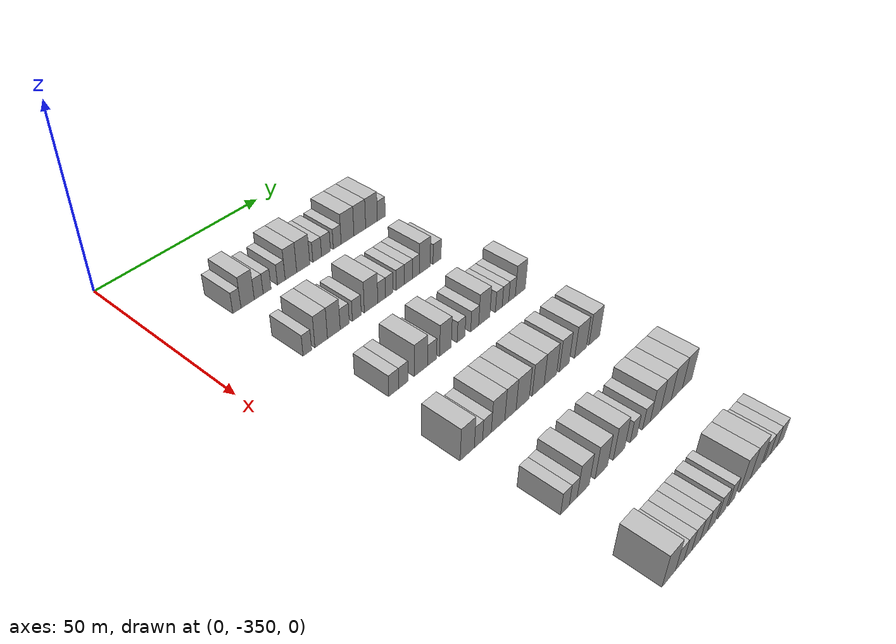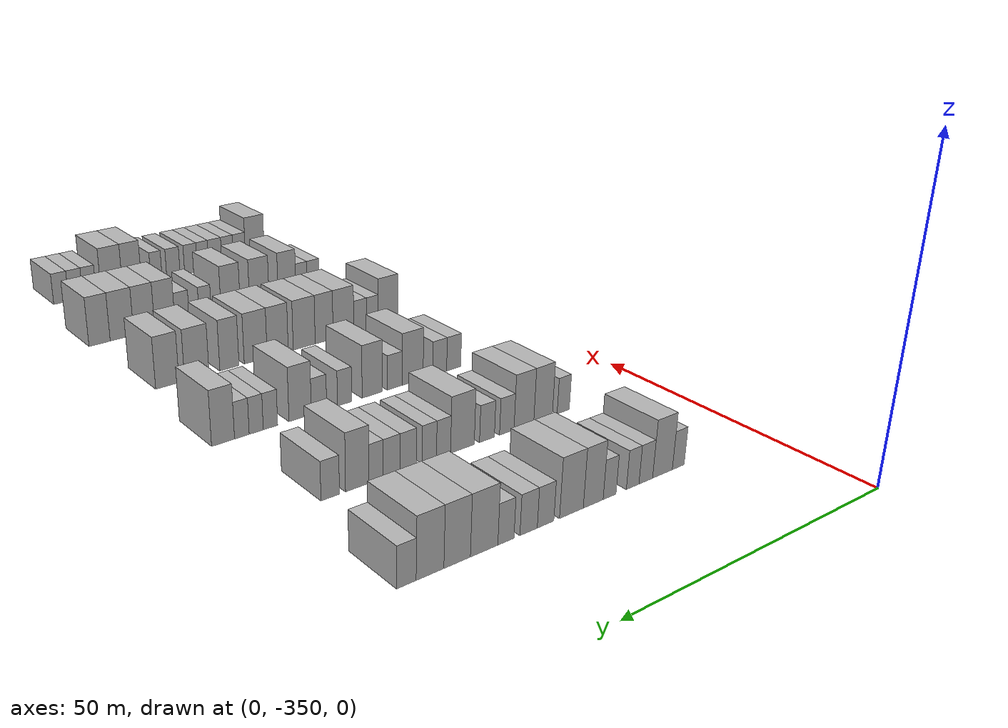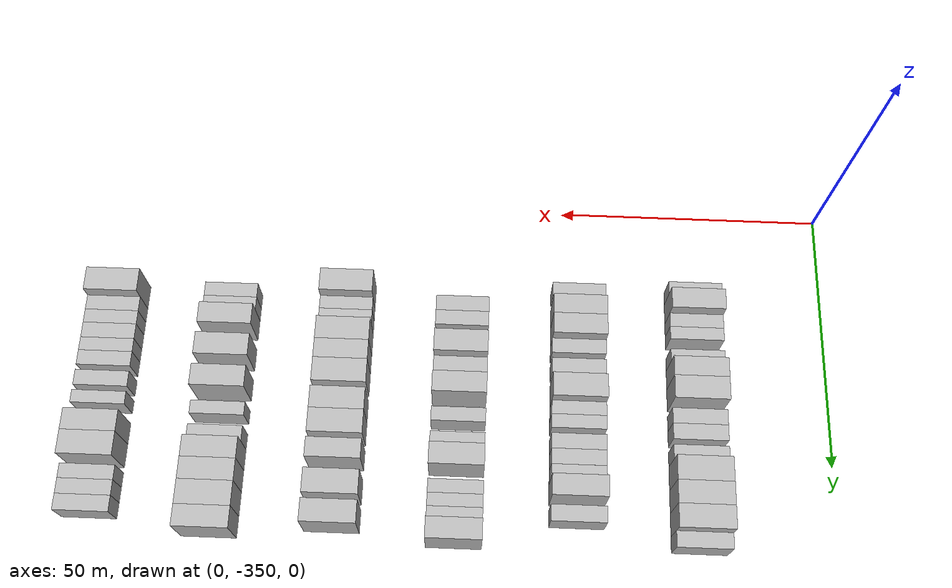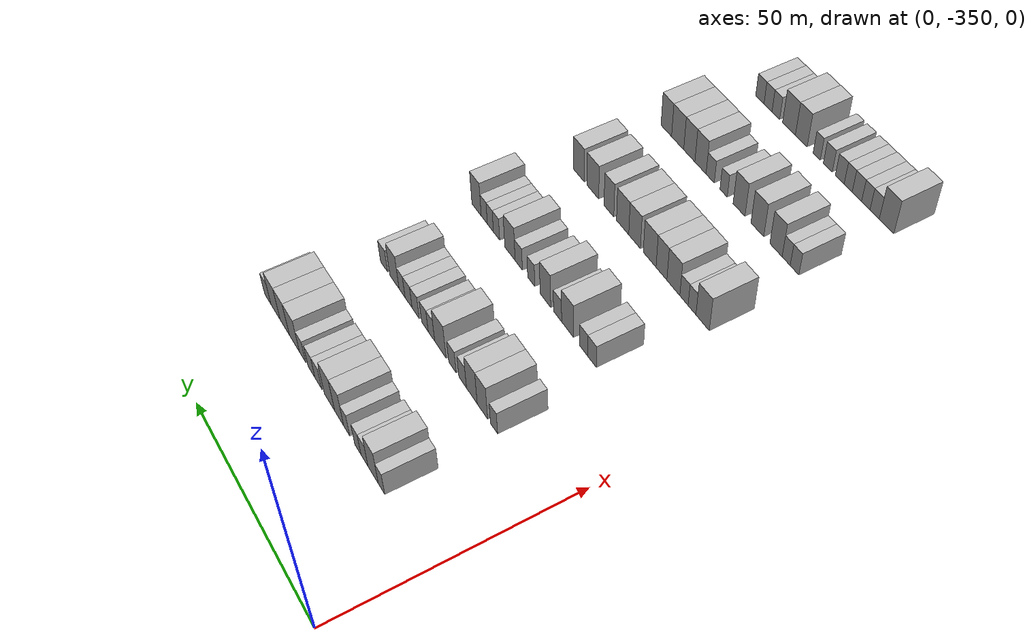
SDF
<sdf version="1.6">
 <world name="default">
  <model name="building_15">
   <static>1</static>
   <pose>25.0000 -332.4710 0 0.000000 0.000000 0.000000</pose>
   <link name="link">
    <pose>0 0 3.00 0 0 0</pose>
    <collision name="collision"><geometry><box><size>10.0000 2.4478 6.0000</size></box></geometry></collision>
    <visual name="visual">
     <cast_shadows>0</cast_shadows>
     <geometry><box><size>10.0000 2.4478 6.0000</size></box></geometry>
     <material>
      <script>
       <uri>model://HANNAS_wall/materials/scripts</uri>
       <uri>model://HANNAS_wall/materials/textures</uri>
       <name>vrc/HANNAS_wall</name>
      </script>
     </material>
    </visual>
   </link>
  </model>
  <model name="building_16">
   <static>1</static>
   <pose>25.0000 -329.2465 0 0.000000 0.000000 0.000000</pose>
   <link name="link">
    <pose>0 0 4.50 0 0 0</pose>
    <collision name="collision"><geometry><box><size>10.0000 4.0012 9.0000</size></box></geometry></collision>
    <visual name="visual">
     <cast_shadows>0</cast_shadows>
     <geometry><box><size>10.0000 4.0012 9.0000</size></box></geometry>
     <material>
      <script>
       <uri>model://HANNAS_wall/materials/scripts</uri>
       <uri>model://HANNAS_wall/materials/textures</uri>
       <name>vrc/HANNAS_wall</name>
      </script>
     </material>
    </visual>
   </link>
  </model>
  <model name="building_17">
   <static>1</static>
   <pose>25.0000 -325.8893 0 0.000000 0.000000 0.000000</pose>
   <link name="link">
    <pose>0 0 3.00 0 0 0</pose>
    <collision name="collision"><geometry><box><size>10.0000 2.7132 6.0000</size></box></geometry></collision>
    <visual name="visual">
     <cast_shadows>0</cast_shadows>
     <geometry><box><size>10.0000 2.7132 6.0000</size></box></geometry>
     <material>
      <script>
       <uri>model://HANNAS_wall/materials/scripts</uri>
       <uri>model://HANNAS_wall/materials/textures</uri>
       <name>vrc/HANNAS_wall</name>
      </script>
     </material>
    </visual>
   </link>
  </model>
  <model name="building_18">
   <static>1</static>
   <pose>25.0000 -323.3023 0 0.000000 0.000000 0.000000</pose>
   <link name="link">
    <pose>0 0 3.00 0 0 0</pose>
    <collision name="collision"><geometry><box><size>10.0000 2.4607 6.0000</size></box></geometry></collision>
    <visual name="visual">
     <cast_shadows>0</cast_shadows>
     <geometry><box><size>10.0000 2.4607 6.0000</size></box></geometry>
     <material>
      <script>
       <uri>model://HANNAS_wall/materials/scripts</uri>
       <uri>model://HANNAS_wall/materials/textures</uri>
       <name>vrc/HANNAS_wall</name>
      </script>
     </material>
    </visual>
   </link>
  </model>
  <model name="building_19">
   <static>1</static>
   <pose>25.0000 -318.8527 0 0.000000 0.000000 0.000000</pose>
   <link name="link">
    <pose>0 0 3.00 0 0 0</pose>
    <collision name="collision"><geometry><box><size>10.0000 2.4385 6.0000</size></box></geometry></collision>
    <visual name="visual">
     <cast_shadows>0</cast_shadows>
     <geometry><box><size>10.0000 2.4385 6.0000</size></box></geometry>
     <material>
      <script>
       <uri>model://HANNAS_wall/materials/scripts</uri>
       <uri>model://HANNAS_wall/materials/textures</uri>
       <name>vrc/HANNAS_wall</name>
      </script>
     </material>
    </visual>
   </link>
  </model>
  <model name="building_20">
   <static>1</static>
   <pose>25.0000 -315.7823 0 0.000000 0.000000 0.000000</pose>
   <link name="link">
    <pose>0 0 4.50 0 0 0</pose>
    <collision name="collision"><geometry><box><size>10.0000 3.7022 9.0000</size></box></geometry></collision>
    <visual name="visual">
     <cast_shadows>0</cast_shadows>
     <geometry><box><size>10.0000 3.7022 9.0000</size></box></geometry>
     <material>
      <script>
       <uri>model://HANNAS_wall/materials/scripts</uri>
       <uri>model://HANNAS_wall/materials/textures</uri>
       <name>vrc/HANNAS_wall</name>
      </script>
     </material>
    </visual>
   </link>
  </model>
  <model name="building_21">
   <static>1</static>
   <pose>25.0000 -311.7753 0 0.000000 0.000000 0.000000</pose>
   <link name="link">
    <pose>0 0 4.50 0 0 0</pose>
    <collision name="collision"><geometry><box><size>10.0000 4.3119 9.0000</size></box></geometry></collision>
    <visual name="visual">
     <cast_shadows>0</cast_shadows>
     <geometry><box><size>10.0000 4.3119 9.0000</size></box></geometry>
     <material>
      <script>
       <uri>model://HANNAS_wall/materials/scripts</uri>
       <uri>model://HANNAS_wall/materials/textures</uri>
       <name>vrc/HANNAS_wall</name>
      </script>
     </material>
    </visual>
   </link>
  </model>
  <model name="building_22">
   <static>1</static>
   <pose>25.0000 -307.1638 0 0.000000 0.000000 0.000000</pose>
   <link name="link">
    <pose>0 0 3.00 0 0 0</pose>
    <collision name="collision"><geometry><box><size>10.0000 2.9110 6.0000</size></box></geometry></collision>
    <visual name="visual">
     <cast_shadows>0</cast_shadows>
     <geometry><box><size>10.0000 2.9110 6.0000</size></box></geometry>
     <material>
      <script>
       <uri>model://HANNAS_wall/materials/scripts</uri>
       <uri>model://HANNAS_wall/materials/textures</uri>
       <name>vrc/HANNAS_wall</name>
      </script>
     </material>
    </visual>
   </link>
  </model>
  <model name="building_23">
   <static>1</static>
   <pose>25.0000 -304.2133 0 0.000000 0.000000 0.000000</pose>
   <link name="link">
    <pose>0 0 3.00 0 0 0</pose>
    <collision name="collision"><geometry><box><size>10.0000 2.9899 6.0000</size></box></geometry></collision>
    <visual name="visual">
     <cast_shadows>0</cast_shadows>
     <geometry><box><size>10.0000 2.9899 6.0000</size></box></geometry>
     <material>
      <script>
       <uri>model://HANNAS_wall/materials/scripts</uri>
       <uri>model://HANNAS_wall/materials/textures</uri>
       <name>vrc/HANNAS_wall</name>
      </script>
     </material>
    </visual>
   </link>
  </model>
  <model name="building_24">
   <static>1</static>
   <pose>25.0000 -300.3630 0 0.000000 0.000000 0.000000</pose>
   <link name="link">
    <pose>0 0 3.00 0 0 0</pose>
    <collision name="collision"><geometry><box><size>10.0000 2.7107 6.0000</size></box></geometry></collision>
    <visual name="visual">
     <cast_shadows>0</cast_shadows>
     <geometry><box><size>10.0000 2.7107 6.0000</size></box></geometry>
     <material>
      <script>
       <uri>model://HANNAS_wall/materials/scripts</uri>
       <uri>model://HANNAS_wall/materials/textures</uri>
       <name>vrc/HANNAS_wall</name>
      </script>
     </material>
    </visual>
   </link>
  </model>
  <model name="building_25">
   <static>1</static>
   <pose>25.0000 -296.7653 0 0.000000 0.000000 0.000000</pose>
   <link name="link">
    <pose>0 0 4.50 0 0 0</pose>
    <collision name="collision"><geometry><box><size>10.0000 4.4847 9.0000</size></box></geometry></collision>
    <visual name="visual">
     <cast_shadows>0</cast_shadows>
     <geometry><box><size>10.0000 4.4847 9.0000</size></box></geometry>
     <material>
      <script>
       <uri>model://HANNAS_wall/materials/scripts</uri>
       <uri>model://HANNAS_wall/materials/textures</uri>
       <name>vrc/HANNAS_wall</name>
      </script>
     </material>
    </visual>
   </link>
  </model>
  <model name="building_26">
   <static>1</static>
   <pose>25.0000 -292.4257 0 0.000000 0.000000 0.000000</pose>
   <link name="link">
    <pose>0 0 4.50 0 0 0</pose>
    <collision name="collision"><geometry><box><size>10.0000 4.1946 9.0000</size></box></geometry></collision>
    <visual name="visual">
     <cast_shadows>0</cast_shadows>
     <geometry><box><size>10.0000 4.1946 9.0000</size></box></geometry>
     <material>
      <script>
       <uri>model://HANNAS_wall/materials/scripts</uri>
       <uri>model://HANNAS_wall/materials/textures</uri>
       <name>vrc/HANNAS_wall</name>
      </script>
     </material>
    </visual>
   </link>
  </model>
  <model name="building_27">
   <static>1</static>
   <pose>25.0000 -288.1981 0 0.000000 0.000000 0.000000</pose>
   <link name="link">
    <pose>0 0 4.50 0 0 0</pose>
    <collision name="collision"><geometry><box><size>10.0000 4.2606 9.0000</size></box></geometry></collision>
    <visual name="visual">
     <cast_shadows>0</cast_shadows>
     <geometry><box><size>10.0000 4.2606 9.0000</size></box></geometry>
     <material>
      <script>
       <uri>model://HANNAS_wall/materials/scripts</uri>
       <uri>model://HANNAS_wall/materials/textures</uri>
       <name>vrc/HANNAS_wall</name>
      </script>
     </material>
    </visual>
   </link>
  </model>
  <model name="building_28">
   <static>1</static>
   <pose>25.0000 -284.6095 0 0.000000 0.000000 0.000000</pose>
   <link name="link">
    <pose>0 0 3.00 0 0 0</pose>
    <collision name="collision"><geometry><box><size>10.0000 2.9166 6.0000</size></box></geometry></collision>
    <visual name="visual">
     <cast_shadows>0</cast_shadows>
     <geometry><box><size>10.0000 2.9166 6.0000</size></box></geometry>
     <material>
      <script>
       <uri>model://HANNAS_wall/materials/scripts</uri>
       <uri>model://HANNAS_wall/materials/textures</uri>
       <name>vrc/HANNAS_wall</name>
      </script>
     </material>
    </visual>
   </link>
  </model>
  <model name="building_197">
   <static>1</static>
   <pose>47.0000 -331.4100 0 0.000000 0.000000 0.000000</pose>
   <link name="link">
    <pose>0 0 3.00 0 0 0</pose>
    <collision name="collision"><geometry><box><size>10.0000 2.5556 6.0000</size></box></geometry></collision>
    <visual name="visual">
     <cast_shadows>0</cast_shadows>
     <geometry><box><size>10.0000 2.5556 6.0000</size></box></geometry>
     <material>
      <script>
       <uri>model://HANNAS_wall/materials/scripts</uri>
       <uri>model://HANNAS_wall/materials/textures</uri>
       <name>vrc/HANNAS_wall</name>
      </script>
     </material>
    </visual>
   </link>
  </model>
  <model name="building_198">
   <static>1</static>
   <pose>47.0000 -327.2264 0 0.000000 0.000000 0.000000</pose>
   <link name="link">
    <pose>0 0 4.50 0 0 0</pose>
    <collision name="collision"><geometry><box><size>10.0000 3.8115 9.0000</size></box></geometry></collision>
    <visual name="visual">
     <cast_shadows>0</cast_shadows>
     <geometry><box><size>10.0000 3.8115 9.0000</size></box></geometry>
     <material>
      <script>
       <uri>model://HANNAS_wall/materials/scripts</uri>
       <uri>model://HANNAS_wall/materials/textures</uri>
       <name>vrc/HANNAS_wall</name>
      </script>
     </material>
    </visual>
   </link>
  </model>
  <model name="building_199">
   <static>1</static>
   <pose>47.0000 -323.3354 0 0.000000 0.000000 0.000000</pose>
   <link name="link">
    <pose>0 0 4.50 0 0 0</pose>
    <collision name="collision"><geometry><box><size>10.0000 3.9704 9.0000</size></box></geometry></collision>
    <visual name="visual">
     <cast_shadows>0</cast_shadows>
     <geometry><box><size>10.0000 3.9704 9.0000</size></box></geometry>
     <material>
      <script>
       <uri>model://HANNAS_wall/materials/scripts</uri>
       <uri>model://HANNAS_wall/materials/textures</uri>
       <name>vrc/HANNAS_wall</name>
      </script>
     </material>
    </visual>
   </link>
  </model>
  <model name="building_200">
   <static>1</static>
   <pose>47.0000 -319.9247 0 0.000000 0.000000 0.000000</pose>
   <link name="link">
    <pose>0 0 3.00 0 0 0</pose>
    <collision name="collision"><geometry><box><size>10.0000 2.8512 6.0000</size></box></geometry></collision>
    <visual name="visual">
     <cast_shadows>0</cast_shadows>
     <geometry><box><size>10.0000 2.8512 6.0000</size></box></geometry>
     <material>
      <script>
       <uri>model://HANNAS_wall/materials/scripts</uri>
       <uri>model://HANNAS_wall/materials/textures</uri>
       <name>vrc/HANNAS_wall</name>
      </script>
     </material>
    </visual>
   </link>
  </model>
  <model name="building_201">
   <static>1</static>
   <pose>47.0000 -316.0681 0 0.000000 0.000000 0.000000</pose>
   <link name="link">
    <pose>0 0 3.00 0 0 0</pose>
    <collision name="collision"><geometry><box><size>10.0000 2.8620 6.0000</size></box></geometry></collision>
    <visual name="visual">
     <cast_shadows>0</cast_shadows>
     <geometry><box><size>10.0000 2.8620 6.0000</size></box></geometry>
     <material>
      <script>
       <uri>model://HANNAS_wall/materials/scripts</uri>
       <uri>model://HANNAS_wall/materials/textures</uri>
       <name>vrc/HANNAS_wall</name>
      </script>
     </material>
    </visual>
   </link>
  </model>
  <model name="building_202">
   <static>1</static>
   <pose>47.0000 -311.4192 0 0.000000 0.000000 0.000000</pose>
   <link name="link">
    <pose>0 0 4.50 0 0 0</pose>
    <collision name="collision"><geometry><box><size>10.0000 4.4359 9.0000</size></box></geometry></collision>
    <visual name="visual">
     <cast_shadows>0</cast_shadows>
     <geometry><box><size>10.0000 4.4359 9.0000</size></box></geometry>
     <material>
      <script>
       <uri>model://HANNAS_wall/materials/scripts</uri>
       <uri>model://HANNAS_wall/materials/textures</uri>
       <name>vrc/HANNAS_wall</name>
      </script>
     </material>
    </visual>
   </link>
  </model>
  <model name="building_203">
   <static>1</static>
   <pose>47.0000 -307.9089 0 0.000000 0.000000 0.000000</pose>
   <link name="link">
    <pose>0 0 3.00 0 0 0</pose>
    <collision name="collision"><geometry><box><size>10.0000 2.5847 6.0000</size></box></geometry></collision>
    <visual name="visual">
     <cast_shadows>0</cast_shadows>
     <geometry><box><size>10.0000 2.5847 6.0000</size></box></geometry>
     <material>
      <script>
       <uri>model://HANNAS_wall/materials/scripts</uri>
       <uri>model://HANNAS_wall/materials/textures</uri>
       <name>vrc/HANNAS_wall</name>
      </script>
     </material>
    </visual>
   </link>
  </model>
  <model name="building_204">
   <static>1</static>
   <pose>47.0000 -305.3234 0 0.000000 0.000000 0.000000</pose>
   <link name="link">
    <pose>0 0 3.00 0 0 0</pose>
    <collision name="collision"><geometry><box><size>10.0000 2.5863 6.0000</size></box></geometry></collision>
    <visual name="visual">
     <cast_shadows>0</cast_shadows>
     <geometry><box><size>10.0000 2.5863 6.0000</size></box></geometry>
     <material>
      <script>
       <uri>model://HANNAS_wall/materials/scripts</uri>
       <uri>model://HANNAS_wall/materials/textures</uri>
       <name>vrc/HANNAS_wall</name>
      </script>
     </material>
    </visual>
   </link>
  </model>
  <model name="building_205">
   <static>1</static>
   <pose>47.0000 -301.5964 0 0.000000 0.000000 0.000000</pose>
   <link name="link">
    <pose>0 0 3.00 0 0 0</pose>
    <collision name="collision"><geometry><box><size>10.0000 2.8677 6.0000</size></box></geometry></collision>
    <visual name="visual">
     <cast_shadows>0</cast_shadows>
     <geometry><box><size>10.0000 2.8677 6.0000</size></box></geometry>
     <material>
      <script>
       <uri>model://HANNAS_wall/materials/scripts</uri>
       <uri>model://HANNAS_wall/materials/textures</uri>
       <name>vrc/HANNAS_wall</name>
      </script>
     </material>
    </visual>
   </link>
  </model>
  <model name="building_206">
   <static>1</static>
   <pose>47.0000 -298.7117 0 0.000000 0.000000 0.000000</pose>
   <link name="link">
    <pose>0 0 3.00 0 0 0</pose>
    <collision name="collision"><geometry><box><size>10.0000 2.9016 6.0000</size></box></geometry></collision>
    <visual name="visual">
     <cast_shadows>0</cast_shadows>
     <geometry><box><size>10.0000 2.9016 6.0000</size></box></geometry>
     <material>
      <script>
       <uri>model://HANNAS_wall/materials/scripts</uri>
       <uri>model://HANNAS_wall/materials/textures</uri>
       <name>vrc/HANNAS_wall</name>
      </script>
     </material>
    </visual>
   </link>
  </model>
  <model name="building_207">
   <static>1</static>
   <pose>47.0000 -296.0267 0 0.000000 0.000000 0.000000</pose>
   <link name="link">
    <pose>0 0 3.00 0 0 0</pose>
    <collision name="collision"><geometry><box><size>10.0000 2.4683 6.0000</size></box></geometry></collision>
    <visual name="visual">
     <cast_shadows>0</cast_shadows>
     <geometry><box><size>10.0000 2.4683 6.0000</size></box></geometry>
     <material>
      <script>
       <uri>model://HANNAS_wall/materials/scripts</uri>
       <uri>model://HANNAS_wall/materials/textures</uri>
       <name>vrc/HANNAS_wall</name>
      </script>
     </material>
    </visual>
   </link>
  </model>
  <model name="building_208">
   <static>1</static>
   <pose>47.0000 -292.8620 0 0.000000 0.000000 0.000000</pose>
   <link name="link">
    <pose>0 0 4.50 0 0 0</pose>
    <collision name="collision"><geometry><box><size>10.0000 3.8612 9.0000</size></box></geometry></collision>
    <visual name="visual">
     <cast_shadows>0</cast_shadows>
     <geometry><box><size>10.0000 3.8612 9.0000</size></box></geometry>
     <material>
      <script>
       <uri>model://HANNAS_wall/materials/scripts</uri>
       <uri>model://HANNAS_wall/materials/textures</uri>
       <name>vrc/HANNAS_wall</name>
      </script>
     </material>
    </visual>
   </link>
  </model>
  <model name="building_209">
   <static>1</static>
   <pose>47.0000 -288.4375 0 0.000000 0.000000 0.000000</pose>
   <link name="link">
    <pose>0 0 3.00 0 0 0</pose>
    <collision name="collision"><geometry><box><size>10.0000 2.9877 6.0000</size></box></geometry></collision>
    <visual name="visual">
     <cast_shadows>0</cast_shadows>
     <geometry><box><size>10.0000 2.9877 6.0000</size></box></geometry>
     <material>
      <script>
       <uri>model://HANNAS_wall/materials/scripts</uri>
       <uri>model://HANNAS_wall/materials/textures</uri>
       <name>vrc/HANNAS_wall</name>
      </script>
     </material>
    </visual>
   </link>
  </model>
  <model name="building_388">
   <static>1</static>
   <pose>69.0000 -327.7000 0 0.000000 0.000000 0.000000</pose>
   <link name="link">
    <pose>0 0 3.00 0 0 0</pose>
    <collision name="collision"><geometry><box><size>10.0000 2.9938 6.0000</size></box></geometry></collision>
    <visual name="visual">
     <cast_shadows>0</cast_shadows>
     <geometry><box><size>10.0000 2.9938 6.0000</size></box></geometry>
     <material>
      <script>
       <uri>model://HANNAS_wall/materials/scripts</uri>
       <uri>model://HANNAS_wall/materials/textures</uri>
       <name>vrc/HANNAS_wall</name>
      </script>
     </material>
    </visual>
   </link>
  </model>
  <model name="building_389">
   <static>1</static>
   <pose>69.0000 -324.7525 0 0.000000 0.000000 0.000000</pose>
   <link name="link">
    <pose>0 0 3.00 0 0 0</pose>
    <collision name="collision"><geometry><box><size>10.0000 2.9013 6.0000</size></box></geometry></collision>
    <visual name="visual">
     <cast_shadows>0</cast_shadows>
     <geometry><box><size>10.0000 2.9013 6.0000</size></box></geometry>
     <material>
      <script>
       <uri>model://HANNAS_wall/materials/scripts</uri>
       <uri>model://HANNAS_wall/materials/textures</uri>
       <name>vrc/HANNAS_wall</name>
      </script>
     </material>
    </visual>
   </link>
  </model>
  <model name="building_390">
   <static>1</static>
   <pose>69.0000 -319.1724 0 0.000000 0.000000 0.000000</pose>
   <link name="link">
    <pose>0 0 4.50 0 0 0</pose>
    <collision name="collision"><geometry><box><size>10.0000 4.2589 9.0000</size></box></geometry></collision>
    <visual name="visual">
     <cast_shadows>0</cast_shadows>
     <geometry><box><size>10.0000 4.2589 9.0000</size></box></geometry>
     <material>
      <script>
       <uri>model://HANNAS_wall/materials/scripts</uri>
       <uri>model://HANNAS_wall/materials/textures</uri>
       <name>vrc/HANNAS_wall</name>
      </script>
     </material>
    </visual>
   </link>
  </model>
  <model name="building_391">
   <static>1</static>
   <pose>69.0000 -315.5765 0 0.000000 0.000000 0.000000</pose>
   <link name="link">
    <pose>0 0 3.00 0 0 0</pose>
    <collision name="collision"><geometry><box><size>10.0000 2.9327 6.0000</size></box></geometry></collision>
    <visual name="visual">
     <cast_shadows>0</cast_shadows>
     <geometry><box><size>10.0000 2.9327 6.0000</size></box></geometry>
     <material>
      <script>
       <uri>model://HANNAS_wall/materials/scripts</uri>
       <uri>model://HANNAS_wall/materials/textures</uri>
       <name>vrc/HANNAS_wall</name>
      </script>
     </material>
    </visual>
   </link>
  </model>
  <model name="building_392">
   <static>1</static>
   <pose>69.0000 -311.1562 0 0.000000 0.000000 0.000000</pose>
   <link name="link">
    <pose>0 0 4.50 0 0 0</pose>
    <collision name="collision"><geometry><box><size>10.0000 3.9080 9.0000</size></box></geometry></collision>
    <visual name="visual">
     <cast_shadows>0</cast_shadows>
     <geometry><box><size>10.0000 3.9080 9.0000</size></box></geometry>
     <material>
      <script>
       <uri>model://HANNAS_wall/materials/scripts</uri>
       <uri>model://HANNAS_wall/materials/textures</uri>
       <name>vrc/HANNAS_wall</name>
      </script>
     </material>
    </visual>
   </link>
  </model>
  <model name="building_393">
   <static>1</static>
   <pose>69.0000 -305.8650 0 0.000000 0.000000 0.000000</pose>
   <link name="link">
    <pose>0 0 3.00 0 0 0</pose>
    <collision name="collision"><geometry><box><size>10.0000 2.6742 6.0000</size></box></geometry></collision>
    <visual name="visual">
     <cast_shadows>0</cast_shadows>
     <geometry><box><size>10.0000 2.6742 6.0000</size></box></geometry>
     <material>
      <script>
       <uri>model://HANNAS_wall/materials/scripts</uri>
       <uri>model://HANNAS_wall/materials/textures</uri>
       <name>vrc/HANNAS_wall</name>
      </script>
     </material>
    </visual>
   </link>
  </model>
  <model name="building_394">
   <static>1</static>
   <pose>69.0000 -301.1251 0 0.000000 0.000000 0.000000</pose>
   <link name="link">
    <pose>0 0 3.00 0 0 0</pose>
    <collision name="collision"><geometry><box><size>10.0000 2.8056 6.0000</size></box></geometry></collision>
    <visual name="visual">
     <cast_shadows>0</cast_shadows>
     <geometry><box><size>10.0000 2.8056 6.0000</size></box></geometry>
     <material>
      <script>
       <uri>model://HANNAS_wall/materials/scripts</uri>
       <uri>model://HANNAS_wall/materials/textures</uri>
       <name>vrc/HANNAS_wall</name>
      </script>
     </material>
    </visual>
   </link>
  </model>
  <model name="building_395">
   <static>1</static>
   <pose>69.0000 -297.7168 0 0.000000 0.000000 0.000000</pose>
   <link name="link">
    <pose>0 0 4.50 0 0 0</pose>
    <collision name="collision"><geometry><box><size>10.0000 4.0110 9.0000</size></box></geometry></collision>
    <visual name="visual">
     <cast_shadows>0</cast_shadows>
     <geometry><box><size>10.0000 4.0110 9.0000</size></box></geometry>
     <material>
      <script>
       <uri>model://HANNAS_wall/materials/scripts</uri>
       <uri>model://HANNAS_wall/materials/textures</uri>
       <name>vrc/HANNAS_wall</name>
      </script>
     </material>
    </visual>
   </link>
  </model>
  <model name="building_396">
   <static>1</static>
   <pose>69.0000 -292.4579 0 0.000000 0.000000 0.000000</pose>
   <link name="link">
    <pose>0 0 3.00 0 0 0</pose>
    <collision name="collision"><geometry><box><size>10.0000 2.5068 6.0000</size></box></geometry></collision>
    <visual name="visual">
     <cast_shadows>0</cast_shadows>
     <geometry><box><size>10.0000 2.5068 6.0000</size></box></geometry>
     <material>
      <script>
       <uri>model://HANNAS_wall/materials/scripts</uri>
       <uri>model://HANNAS_wall/materials/textures</uri>
       <name>vrc/HANNAS_wall</name>
      </script>
     </material>
    </visual>
   </link>
  </model>
  <model name="building_397">
   <static>1</static>
   <pose>69.0000 -289.9950 0 0.000000 0.000000 0.000000</pose>
   <link name="link">
    <pose>0 0 3.00 0 0 0</pose>
    <collision name="collision"><geometry><box><size>10.0000 2.4191 6.0000</size></box></geometry></collision>
    <visual name="visual">
     <cast_shadows>0</cast_shadows>
     <geometry><box><size>10.0000 2.4191 6.0000</size></box></geometry>
     <material>
      <script>
       <uri>model://HANNAS_wall/materials/scripts</uri>
       <uri>model://HANNAS_wall/materials/textures</uri>
       <name>vrc/HANNAS_wall</name>
      </script>
     </material>
    </visual>
   </link>
  </model>
  <model name="building_398">
   <static>1</static>
   <pose>69.0000 -287.5463 0 0.000000 0.000000 0.000000</pose>
   <link name="link">
    <pose>0 0 3.00 0 0 0</pose>
    <collision name="collision"><geometry><box><size>10.0000 2.4783 6.0000</size></box></geometry></collision>
    <visual name="visual">
     <cast_shadows>0</cast_shadows>
     <geometry><box><size>10.0000 2.4783 6.0000</size></box></geometry>
     <material>
      <script>
       <uri>model://HANNAS_wall/materials/scripts</uri>
       <uri>model://HANNAS_wall/materials/textures</uri>
       <name>vrc/HANNAS_wall</name>
      </script>
     </material>
    </visual>
   </link>
  </model>
  <model name="building_399">
   <static>1</static>
   <pose>69.0000 -284.4016 0 0.000000 0.000000 0.000000</pose>
   <link name="link">
    <pose>0 0 4.50 0 0 0</pose>
    <collision name="collision"><geometry><box><size>10.0000 3.8112 9.0000</size></box></geometry></collision>
    <visual name="visual">
     <cast_shadows>0</cast_shadows>
     <geometry><box><size>10.0000 3.8112 9.0000</size></box></geometry>
     <material>
      <script>
       <uri>model://HANNAS_wall/materials/scripts</uri>
       <uri>model://HANNAS_wall/materials/textures</uri>
       <name>vrc/HANNAS_wall</name>
      </script>
     </material>
    </visual>
   </link>
  </model>
  <model name="building_582">
   <static>1</static>
   <pose>91.0000 -330.4313 0 0.000000 0.000000 0.000000</pose>
   <link name="link">
    <pose>0 0 4.50 0 0 0</pose>
    <collision name="collision"><geometry><box><size>10.0000 4.3455 9.0000</size></box></geometry></collision>
    <visual name="visual">
     <cast_shadows>0</cast_shadows>
     <geometry><box><size>10.0000 4.3455 9.0000</size></box></geometry>
     <material>
      <script>
       <uri>model://HANNAS_wall/materials/scripts</uri>
       <uri>model://HANNAS_wall/materials/textures</uri>
       <name>vrc/HANNAS_wall</name>
      </script>
     </material>
    </visual>
   </link>
  </model>
  <model name="building_583">
   <static>1</static>
   <pose>91.0000 -326.9714 0 0.000000 0.000000 0.000000</pose>
   <link name="link">
    <pose>0 0 3.00 0 0 0</pose>
    <collision name="collision"><geometry><box><size>10.0000 2.5744 6.0000</size></box></geometry></collision>
    <visual name="visual">
     <cast_shadows>0</cast_shadows>
     <geometry><box><size>10.0000 2.5744 6.0000</size></box></geometry>
     <material>
      <script>
       <uri>model://HANNAS_wall/materials/scripts</uri>
       <uri>model://HANNAS_wall/materials/textures</uri>
       <name>vrc/HANNAS_wall</name>
      </script>
     </material>
    </visual>
   </link>
  </model>
  <model name="building_584">
   <static>1</static>
   <pose>91.0000 -324.3081 0 0.000000 0.000000 0.000000</pose>
   <link name="link">
    <pose>0 0 3.00 0 0 0</pose>
    <collision name="collision"><geometry><box><size>10.0000 2.7521 6.0000</size></box></geometry></collision>
    <visual name="visual">
     <cast_shadows>0</cast_shadows>
     <geometry><box><size>10.0000 2.7521 6.0000</size></box></geometry>
     <material>
      <script>
       <uri>model://HANNAS_wall/materials/scripts</uri>
       <uri>model://HANNAS_wall/materials/textures</uri>
       <name>vrc/HANNAS_wall</name>
      </script>
     </material>
    </visual>
   </link>
  </model>
  <model name="building_585">
   <static>1</static>
   <pose>91.0000 -320.7421 0 0.000000 0.000000 0.000000</pose>
   <link name="link">
    <pose>0 0 4.50 0 0 0</pose>
    <collision name="collision"><geometry><box><size>10.0000 4.3799 9.0000</size></box></geometry></collision>
    <visual name="visual">
     <cast_shadows>0</cast_shadows>
     <geometry><box><size>10.0000 4.3799 9.0000</size></box></geometry>
     <material>
      <script>
       <uri>model://HANNAS_wall/materials/scripts</uri>
       <uri>model://HANNAS_wall/materials/textures</uri>
       <name>vrc/HANNAS_wall</name>
      </script>
     </material>
    </visual>
   </link>
  </model>
  <model name="building_586">
   <static>1</static>
   <pose>91.0000 -316.6899 0 0.000000 0.000000 0.000000</pose>
   <link name="link">
    <pose>0 0 4.50 0 0 0</pose>
    <collision name="collision"><geometry><box><size>10.0000 3.7246 9.0000</size></box></geometry></collision>
    <visual name="visual">
     <cast_shadows>0</cast_shadows>
     <geometry><box><size>10.0000 3.7246 9.0000</size></box></geometry>
     <material>
      <script>
       <uri>model://HANNAS_wall/materials/scripts</uri>
       <uri>model://HANNAS_wall/materials/textures</uri>
       <name>vrc/HANNAS_wall</name>
      </script>
     </material>
    </visual>
   </link>
  </model>
  <model name="building_587">
   <static>1</static>
   <pose>91.0000 -312.5911 0 0.000000 0.000000 0.000000</pose>
   <link name="link">
    <pose>0 0 4.50 0 0 0</pose>
    <collision name="collision"><geometry><box><size>10.0000 4.4730 9.0000</size></box></geometry></collision>
    <visual name="visual">
     <cast_shadows>0</cast_shadows>
     <geometry><box><size>10.0000 4.4730 9.0000</size></box></geometry>
     <material>
      <script>
       <uri>model://HANNAS_wall/materials/scripts</uri>
       <uri>model://HANNAS_wall/materials/textures</uri>
       <name>vrc/HANNAS_wall</name>
      </script>
     </material>
    </visual>
   </link>
  </model>
  <model name="building_588">
   <static>1</static>
   <pose>91.0000 -307.2700 0 0.000000 0.000000 0.000000</pose>
   <link name="link">
    <pose>0 0 4.50 0 0 0</pose>
    <collision name="collision"><geometry><box><size>10.0000 4.1693 9.0000</size></box></geometry></collision>
    <visual name="visual">
     <cast_shadows>0</cast_shadows>
     <geometry><box><size>10.0000 4.1693 9.0000</size></box></geometry>
     <material>
      <script>
       <uri>model://HANNAS_wall/materials/scripts</uri>
       <uri>model://HANNAS_wall/materials/textures</uri>
       <name>vrc/HANNAS_wall</name>
      </script>
     </material>
    </visual>
   </link>
  </model>
  <model name="building_589">
   <static>1</static>
   <pose>91.0000 -302.9613 0 0.000000 0.000000 0.000000</pose>
   <link name="link">
    <pose>0 0 4.50 0 0 0</pose>
    <collision name="collision"><geometry><box><size>10.0000 4.4480 9.0000</size></box></geometry></collision>
    <visual name="visual">
     <cast_shadows>0</cast_shadows>
     <geometry><box><size>10.0000 4.4480 9.0000</size></box></geometry>
     <material>
      <script>
       <uri>model://HANNAS_wall/materials/scripts</uri>
       <uri>model://HANNAS_wall/materials/textures</uri>
       <name>vrc/HANNAS_wall</name>
      </script>
     </material>
    </visual>
   </link>
  </model>
  <model name="building_590">
   <static>1</static>
   <pose>91.0000 -297.9302 0 0.000000 0.000000 0.000000</pose>
   <link name="link">
    <pose>0 0 4.50 0 0 0</pose>
    <collision name="collision"><geometry><box><size>10.0000 3.6143 9.0000</size></box></geometry></collision>
    <visual name="visual">
     <cast_shadows>0</cast_shadows>
     <geometry><box><size>10.0000 3.6143 9.0000</size></box></geometry>
     <material>
      <script>
       <uri>model://HANNAS_wall/materials/scripts</uri>
       <uri>model://HANNAS_wall/materials/textures</uri>
       <name>vrc/HANNAS_wall</name>
      </script>
     </material>
    </visual>
   </link>
  </model>
  <model name="building_591">
   <static>1</static>
   <pose>91.0000 -291.8953 0 0.000000 0.000000 0.000000</pose>
   <link name="link">
    <pose>0 0 4.50 0 0 0</pose>
    <collision name="collision"><geometry><box><size>10.0000 4.4555 9.0000</size></box></geometry></collision>
    <visual name="visual">
     <cast_shadows>0</cast_shadows>
     <geometry><box><size>10.0000 4.4555 9.0000</size></box></geometry>
     <material>
      <script>
       <uri>model://HANNAS_wall/materials/scripts</uri>
       <uri>model://HANNAS_wall/materials/textures</uri>
       <name>vrc/HANNAS_wall</name>
      </script>
     </material>
    </visual>
   </link>
  </model>
  <model name="building_592">
   <static>1</static>
   <pose>91.0000 -286.5893 0 0.000000 0.000000 0.000000</pose>
   <link name="link">
    <pose>0 0 4.50 0 0 0</pose>
    <collision name="collision"><geometry><box><size>10.0000 4.1566 9.0000</size></box></geometry></collision>
    <visual name="visual">
     <cast_shadows>0</cast_shadows>
     <geometry><box><size>10.0000 4.1566 9.0000</size></box></geometry>
     <material>
      <script>
       <uri>model://HANNAS_wall/materials/scripts</uri>
       <uri>model://HANNAS_wall/materials/textures</uri>
       <name>vrc/HANNAS_wall</name>
      </script>
     </material>
    </visual>
   </link>
  </model>
  <model name="building_766">
   <static>1</static>
   <pose>113.0000 -328.8081 0 0.000000 0.000000 0.000000</pose>
   <link name="link">
    <pose>0 0 3.00 0 0 0</pose>
    <collision name="collision"><geometry><box><size>10.0000 2.7486 6.0000</size></box></geometry></collision>
    <visual name="visual">
     <cast_shadows>0</cast_shadows>
     <geometry><box><size>10.0000 2.7486 6.0000</size></box></geometry>
     <material>
      <script>
       <uri>model://HANNAS_wall/materials/scripts</uri>
       <uri>model://HANNAS_wall/materials/textures</uri>
       <name>vrc/HANNAS_wall</name>
      </script>
     </material>
    </visual>
   </link>
  </model>
  <model name="building_767">
   <static>1</static>
   <pose>113.0000 -326.1483 0 0.000000 0.000000 0.000000</pose>
   <link name="link">
    <pose>0 0 3.00 0 0 0</pose>
    <collision name="collision"><geometry><box><size>10.0000 2.5708 6.0000</size></box></geometry></collision>
    <visual name="visual">
     <cast_shadows>0</cast_shadows>
     <geometry><box><size>10.0000 2.5708 6.0000</size></box></geometry>
     <material>
      <script>
       <uri>model://HANNAS_wall/materials/scripts</uri>
       <uri>model://HANNAS_wall/materials/textures</uri>
       <name>vrc/HANNAS_wall</name>
      </script>
     </material>
    </visual>
   </link>
  </model>
  <model name="building_768">
   <static>1</static>
   <pose>113.0000 -322.8839 0 0.000000 0.000000 0.000000</pose>
   <link name="link">
    <pose>0 0 4.50 0 0 0</pose>
    <collision name="collision"><geometry><box><size>10.0000 3.9581 9.0000</size></box></geometry></collision>
    <visual name="visual">
     <cast_shadows>0</cast_shadows>
     <geometry><box><size>10.0000 3.9581 9.0000</size></box></geometry>
     <material>
      <script>
       <uri>model://HANNAS_wall/materials/scripts</uri>
       <uri>model://HANNAS_wall/materials/textures</uri>
       <name>vrc/HANNAS_wall</name>
      </script>
     </material>
    </visual>
   </link>
  </model>
  <model name="building_769">
   <static>1</static>
   <pose>113.0000 -316.7929 0 0.000000 0.000000 0.000000</pose>
   <link name="link">
    <pose>0 0 4.50 0 0 0</pose>
    <collision name="collision"><geometry><box><size>10.0000 4.2239 9.0000</size></box></geometry></collision>
    <visual name="visual">
     <cast_shadows>0</cast_shadows>
     <geometry><box><size>10.0000 4.2239 9.0000</size></box></geometry>
     <material>
      <script>
       <uri>model://HANNAS_wall/materials/scripts</uri>
       <uri>model://HANNAS_wall/materials/textures</uri>
       <name>vrc/HANNAS_wall</name>
      </script>
     </material>
    </visual>
   </link>
  </model>
  <model name="building_770">
   <static>1</static>
   <pose>113.0000 -310.6653 0 0.000000 0.000000 0.000000</pose>
   <link name="link">
    <pose>0 0 4.50 0 0 0</pose>
    <collision name="collision"><geometry><box><size>10.0000 4.0313 9.0000</size></box></geometry></collision>
    <visual name="visual">
     <cast_shadows>0</cast_shadows>
     <geometry><box><size>10.0000 4.0313 9.0000</size></box></geometry>
     <material>
      <script>
       <uri>model://HANNAS_wall/materials/scripts</uri>
       <uri>model://HANNAS_wall/materials/textures</uri>
       <name>vrc/HANNAS_wall</name>
      </script>
     </material>
    </visual>
   </link>
  </model>
  <model name="building_771">
   <static>1</static>
   <pose>113.0000 -305.3930 0 0.000000 0.000000 0.000000</pose>
   <link name="link">
    <pose>0 0 3.00 0 0 0</pose>
    <collision name="collision"><geometry><box><size>10.0000 2.5132 6.0000</size></box></geometry></collision>
    <visual name="visual">
     <cast_shadows>0</cast_shadows>
     <geometry><box><size>10.0000 2.5132 6.0000</size></box></geometry>
     <material>
      <script>
       <uri>model://HANNAS_wall/materials/scripts</uri>
       <uri>model://HANNAS_wall/materials/textures</uri>
       <name>vrc/HANNAS_wall</name>
      </script>
     </material>
    </visual>
   </link>
  </model>
  <model name="building_772">
   <static>1</static>
   <pose>113.0000 -300.6953 0 0.000000 0.000000 0.000000</pose>
   <link name="link">
    <pose>0 0 3.00 0 0 0</pose>
    <collision name="collision"><geometry><box><size>10.0000 2.8823 6.0000</size></box></geometry></collision>
    <visual name="visual">
     <cast_shadows>0</cast_shadows>
     <geometry><box><size>10.0000 2.8823 6.0000</size></box></geometry>
     <material>
      <script>
       <uri>model://HANNAS_wall/materials/scripts</uri>
       <uri>model://HANNAS_wall/materials/textures</uri>
       <name>vrc/HANNAS_wall</name>
      </script>
     </material>
    </visual>
   </link>
  </model>
  <model name="building_773">
   <static>1</static>
   <pose>113.0000 -297.2633 0 0.000000 0.000000 0.000000</pose>
   <link name="link">
    <pose>0 0 4.50 0 0 0</pose>
    <collision name="collision"><geometry><box><size>10.0000 3.9817 9.0000</size></box></geometry></collision>
    <visual name="visual">
     <cast_shadows>0</cast_shadows>
     <geometry><box><size>10.0000 3.9817 9.0000</size></box></geometry>
     <material>
      <script>
       <uri>model://HANNAS_wall/materials/scripts</uri>
       <uri>model://HANNAS_wall/materials/textures</uri>
       <name>vrc/HANNAS_wall</name>
      </script>
     </material>
    </visual>
   </link>
  </model>
  <model name="building_774">
   <static>1</static>
   <pose>113.0000 -293.2487 0 0.000000 0.000000 0.000000</pose>
   <link name="link">
    <pose>0 0 4.50 0 0 0</pose>
    <collision name="collision"><geometry><box><size>10.0000 4.0475 9.0000</size></box></geometry></collision>
    <visual name="visual">
     <cast_shadows>0</cast_shadows>
     <geometry><box><size>10.0000 4.0475 9.0000</size></box></geometry>
     <material>
      <script>
       <uri>model://HANNAS_wall/materials/scripts</uri>
       <uri>model://HANNAS_wall/materials/textures</uri>
       <name>vrc/HANNAS_wall</name>
      </script>
     </material>
    </visual>
   </link>
  </model>
  <model name="building_775">
   <static>1</static>
   <pose>113.0000 -288.9891 0 0.000000 0.000000 0.000000</pose>
   <link name="link">
    <pose>0 0 4.50 0 0 0</pose>
    <collision name="collision"><geometry><box><size>10.0000 4.4717 9.0000</size></box></geometry></collision>
    <visual name="visual">
     <cast_shadows>0</cast_shadows>
     <geometry><box><size>10.0000 4.4717 9.0000</size></box></geometry>
     <material>
      <script>
       <uri>model://HANNAS_wall/materials/scripts</uri>
       <uri>model://HANNAS_wall/materials/textures</uri>
       <name>vrc/HANNAS_wall</name>
      </script>
     </material>
    </visual>
   </link>
  </model>
  <model name="building_776">
   <static>1</static>
   <pose>113.0000 -284.7883 0 0.000000 0.000000 0.000000</pose>
   <link name="link">
    <pose>0 0 4.50 0 0 0</pose>
    <collision name="collision"><geometry><box><size>10.0000 3.9300 9.0000</size></box></geometry></collision>
    <visual name="visual">
     <cast_shadows>0</cast_shadows>
     <geometry><box><size>10.0000 3.9300 9.0000</size></box></geometry>
     <material>
      <script>
       <uri>model://HANNAS_wall/materials/scripts</uri>
       <uri>model://HANNAS_wall/materials/textures</uri>
       <name>vrc/HANNAS_wall</name>
      </script>
     </material>
    </visual>
   </link>
  </model>
  <model name="building_947">
   <static>1</static>
   <pose>135.0000 -328.8536 0 0.000000 0.000000 0.000000</pose>
   <link name="link">
    <pose>0 0 4.50 0 0 0</pose>
    <collision name="collision"><geometry><box><size>10.0000 4.4683 9.0000</size></box></geometry></collision>
    <visual name="visual">
     <cast_shadows>0</cast_shadows>
     <geometry><box><size>10.0000 4.4683 9.0000</size></box></geometry>
     <material>
      <script>
       <uri>model://HANNAS_wall/materials/scripts</uri>
       <uri>model://HANNAS_wall/materials/textures</uri>
       <name>vrc/HANNAS_wall</name>
      </script>
     </material>
    </visual>
   </link>
  </model>
  <model name="building_948">
   <static>1</static>
   <pose>135.0000 -325.1891 0 0.000000 0.000000 0.000000</pose>
   <link name="link">
    <pose>0 0 3.00 0 0 0</pose>
    <collision name="collision"><geometry><box><size>10.0000 2.8607 6.0000</size></box></geometry></collision>
    <visual name="visual">
     <cast_shadows>0</cast_shadows>
     <geometry><box><size>10.0000 2.8607 6.0000</size></box></geometry>
     <material>
      <script>
       <uri>model://HANNAS_wall/materials/scripts</uri>
       <uri>model://HANNAS_wall/materials/textures</uri>
       <name>vrc/HANNAS_wall</name>
      </script>
     </material>
    </visual>
   </link>
  </model>
  <model name="building_949">
   <static>1</static>
   <pose>135.0000 -322.4351 0 0.000000 0.000000 0.000000</pose>
   <link name="link">
    <pose>0 0 3.00 0 0 0</pose>
    <collision name="collision"><geometry><box><size>10.0000 2.6473 6.0000</size></box></geometry></collision>
    <visual name="visual">
     <cast_shadows>0</cast_shadows>
     <geometry><box><size>10.0000 2.6473 6.0000</size></box></geometry>
     <material>
      <script>
       <uri>model://HANNAS_wall/materials/scripts</uri>
       <uri>model://HANNAS_wall/materials/textures</uri>
       <name>vrc/HANNAS_wall</name>
      </script>
     </material>
    </visual>
   </link>
  </model>
  <model name="building_950">
   <static>1</static>
   <pose>135.0000 -319.6239 0 0.000000 0.000000 0.000000</pose>
   <link name="link">
    <pose>0 0 3.00 0 0 0</pose>
    <collision name="collision"><geometry><box><size>10.0000 2.9752 6.0000</size></box></geometry></collision>
    <visual name="visual">
     <cast_shadows>0</cast_shadows>
     <geometry><box><size>10.0000 2.9752 6.0000</size></box></geometry>
     <material>
      <script>
       <uri>model://HANNAS_wall/materials/scripts</uri>
       <uri>model://HANNAS_wall/materials/textures</uri>
       <name>vrc/HANNAS_wall</name>
      </script>
     </material>
    </visual>
   </link>
  </model>
  <model name="building_951">
   <static>1</static>
   <pose>135.0000 -316.8485 0 0.000000 0.000000 0.000000</pose>
   <link name="link">
    <pose>0 0 3.00 0 0 0</pose>
    <collision name="collision"><geometry><box><size>10.0000 2.5756 6.0000</size></box></geometry></collision>
    <visual name="visual">
     <cast_shadows>0</cast_shadows>
     <geometry><box><size>10.0000 2.5756 6.0000</size></box></geometry>
     <material>
      <script>
       <uri>model://HANNAS_wall/materials/scripts</uri>
       <uri>model://HANNAS_wall/materials/textures</uri>
       <name>vrc/HANNAS_wall</name>
      </script>
     </material>
    </visual>
   </link>
  </model>
  <model name="building_952">
   <static>1</static>
   <pose>135.0000 -314.1363 0 0.000000 0.000000 0.000000</pose>
   <link name="link">
    <pose>0 0 3.00 0 0 0</pose>
    <collision name="collision"><geometry><box><size>10.0000 2.8487 6.0000</size></box></geometry></collision>
    <visual name="visual">
     <cast_shadows>0</cast_shadows>
     <geometry><box><size>10.0000 2.8487 6.0000</size></box></geometry>
     <material>
      <script>
       <uri>model://HANNAS_wall/materials/scripts</uri>
       <uri>model://HANNAS_wall/materials/textures</uri>
       <name>vrc/HANNAS_wall</name>
      </script>
     </material>
    </visual>
   </link>
  </model>
  <model name="building_953">
   <static>1</static>
   <pose>135.0000 -310.2464 0 0.000000 0.000000 0.000000</pose>
   <link name="link">
    <pose>0 0 3.00 0 0 0</pose>
    <collision name="collision"><geometry><box><size>10.0000 2.9311 6.0000</size></box></geometry></collision>
    <visual name="visual">
     <cast_shadows>0</cast_shadows>
     <geometry><box><size>10.0000 2.9311 6.0000</size></box></geometry>
     <material>
      <script>
       <uri>model://HANNAS_wall/materials/scripts</uri>
       <uri>model://HANNAS_wall/materials/textures</uri>
       <name>vrc/HANNAS_wall</name>
      </script>
     </material>
    </visual>
   </link>
  </model>
  <model name="building_954">
   <static>1</static>
   <pose>135.0000 -306.5790 0 0.000000 0.000000 0.000000</pose>
   <link name="link">
    <pose>0 0 3.00 0 0 0</pose>
    <collision name="collision"><geometry><box><size>10.0000 2.4037 6.0000</size></box></geometry></collision>
    <visual name="visual">
     <cast_shadows>0</cast_shadows>
     <geometry><box><size>10.0000 2.4037 6.0000</size></box></geometry>
     <material>
      <script>
       <uri>model://HANNAS_wall/materials/scripts</uri>
       <uri>model://HANNAS_wall/materials/textures</uri>
       <name>vrc/HANNAS_wall</name>
      </script>
     </material>
    </visual>
   </link>
  </model>
  <model name="building_955">
   <static>1</static>
   <pose>135.0000 -301.3768 0 0.000000 0.000000 0.000000</pose>
   <link name="link">
    <pose>0 0 4.50 0 0 0</pose>
    <collision name="collision"><geometry><box><size>10.0000 4.0008 9.0000</size></box></geometry></collision>
    <visual name="visual">
     <cast_shadows>0</cast_shadows>
     <geometry><box><size>10.0000 4.0008 9.0000</size></box></geometry>
     <material>
      <script>
       <uri>model://HANNAS_wall/materials/scripts</uri>
       <uri>model://HANNAS_wall/materials/textures</uri>
       <name>vrc/HANNAS_wall</name>
      </script>
     </material>
    </visual>
   </link>
  </model>
  <model name="building_956">
   <static>1</static>
   <pose>135.0000 -297.1654 0 0.000000 0.000000 0.000000</pose>
   <link name="link">
    <pose>0 0 4.50 0 0 0</pose>
    <collision name="collision"><geometry><box><size>10.0000 4.4220 9.0000</size></box></geometry></collision>
    <visual name="visual">
     <cast_shadows>0</cast_shadows>
     <geometry><box><size>10.0000 4.4220 9.0000</size></box></geometry>
     <material>
      <script>
       <uri>model://HANNAS_wall/materials/scripts</uri>
       <uri>model://HANNAS_wall/materials/textures</uri>
       <name>vrc/HANNAS_wall</name>
      </script>
     </material>
    </visual>
   </link>
  </model>
  <model name="building_957">
   <static>1</static>
   <pose>135.0000 -292.5990 0 0.000000 0.000000 0.000000</pose>
   <link name="link">
    <pose>0 0 3.00 0 0 0</pose>
    <collision name="collision"><geometry><box><size>10.0000 2.7109 6.0000</size></box></geometry></collision>
    <visual name="visual">
     <cast_shadows>0</cast_shadows>
     <geometry><box><size>10.0000 2.7109 6.0000</size></box></geometry>
     <material>
      <script>
       <uri>model://HANNAS_wall/materials/scripts</uri>
       <uri>model://HANNAS_wall/materials/textures</uri>
       <name>vrc/HANNAS_wall</name>
      </script>
     </material>
    </visual>
   </link>
  </model>
  <model name="building_958">
   <static>1</static>
   <pose>135.0000 -289.8322 0 0.000000 0.000000 0.000000</pose>
   <link name="link">
    <pose>0 0 3.00 0 0 0</pose>
    <collision name="collision"><geometry><box><size>10.0000 2.8227 6.0000</size></box></geometry></collision>
    <visual name="visual">
     <cast_shadows>0</cast_shadows>
     <geometry><box><size>10.0000 2.8227 6.0000</size></box></geometry>
     <material>
      <script>
       <uri>model://HANNAS_wall/materials/scripts</uri>
       <uri>model://HANNAS_wall/materials/textures</uri>
       <name>vrc/HANNAS_wall</name>
      </script>
     </material>
    </visual>
   </link>
  </model>
  <model name="building_959">
   <static>1</static>
   <pose>135.0000 -286.9423 0 0.000000 0.000000 0.000000</pose>
   <link name="link">
    <pose>0 0 3.00 0 0 0</pose>
    <collision name="collision"><geometry><box><size>10.0000 2.9571 6.0000</size></box></geometry></collision>
    <visual name="visual">
     <cast_shadows>0</cast_shadows>
     <geometry><box><size>10.0000 2.9571 6.0000</size></box></geometry>
     <material>
      <script>
       <uri>model://HANNAS_wall/materials/scripts</uri>
       <uri>model://HANNAS_wall/materials/textures</uri>
       <name>vrc/HANNAS_wall</name>
      </script>
     </material>
    </visual>
   </link>
  </model>
 </world>
</sdf>
